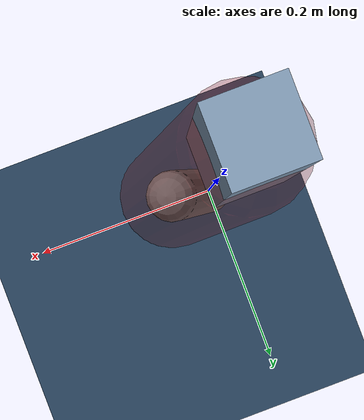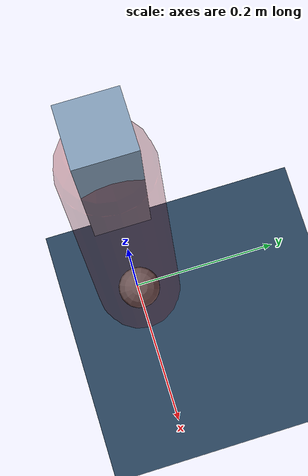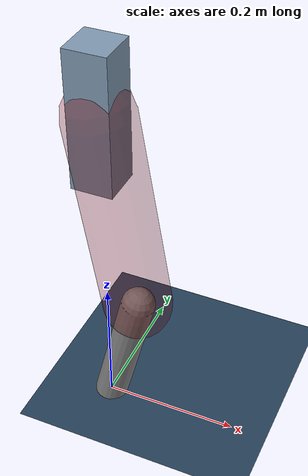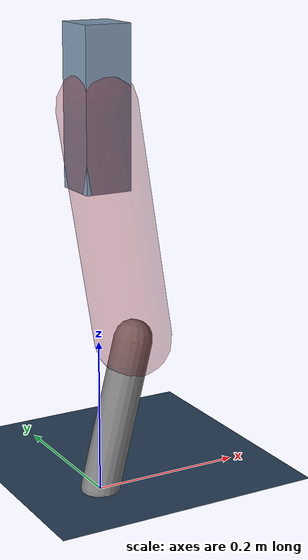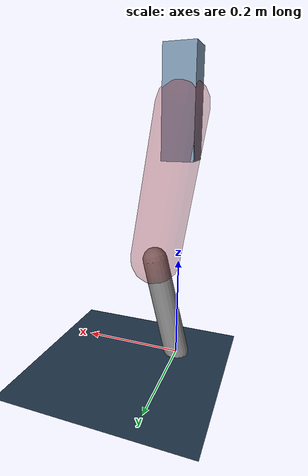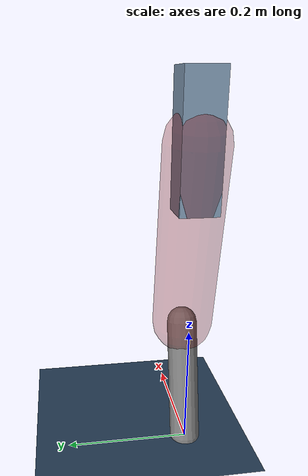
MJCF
<mujoco model="Hopper2D">
	<compiler inertiafromgeom="true" angle="radian" />
	<option timestep="0.001" integrator="implicit" cone="elliptic" solver="Newton" tolerance="1e-10" />

	<default>
		<geom contype="1" conaffinity="1" condim="3" friction="2 0.005 0.0001" solref="0.005 1" />
		<joint limited="true" damping="0.1" />
	</default>

	<asset>
		<texture name="skybox" type="skybox" builtin="gradient" rgb1=".4 .6 .8" rgb2="0 0 0" width="800" height="800" />
		<texture name="grid" type="2d" builtin="checker" rgb1=".1 .2 .3" rgb2=".2 .3 .4" width="300" height="300" mark="edge" markrgb=".2 .3 .4" />
		<material name="ground" texture="grid" texrepeat="1 1" texuniform="true" reflectance="0.1" />
		<material name="leg" rgba="0.5 0.6 0.7 1" />
	</asset>

	<worldbody>

		<geom name="floor" type="plane" size="5 5 0.25" material="ground" />

		<light directional="false" diffuse="0.8 0.8 0.8" specular="0.3 0.3 0.3" pos="0 0 2" dir="0 0 -1" />
		<light mode="targetbodycom" target="base" directional="false" diffuse="0.8 0.8 0.8" specular="0.3 0.3 0.3" pos="0 0 2" dir="0 0 -1" />

		<camera name="fixed" pos="0 -2 1" xyaxes="1 0 0 0 0 1" />
		<camera name="tracking" mode="trackcom" pos="0 -3 1" />

		<body name="root" pos="0 0 0.49656906338552675">
			<joint name="slide_x" type="slide" axis="1 0 0" range="-100 100" />
			<joint name="slide_z" type="slide" axis="0 0 1" range="0 10" />

			<body name="base" pos="0 0 0">
				<geom name="torso" type="box" size="0.03 0.03 0.1" mass="2.4370000000000003" material="leg" />

				<body name="link1" pos="0 0 0" euler="0 1.4084634024026732 0">
					<joint type="hinge" axis="0 -1 0" pos="0 0 0" name="hinge1" limited="true" range="-3.14 3.14" stiffness="0" damping="0.1" />
					<geom name="thigh" type="capsule" fromto="0 0 0 0.30345832260949424 0 0" size="0.05" rgba="0.5 0 0 0.3" mass="0.9981374710456344" />

					<body name="link2" pos="0.30345832260949424 0 0" euler="0 0.4062136005670705 0">
						<joint type="hinge" axis="0 -1 0" pos="0 0 0" name="hinge2" limited="true" range="-3.14 3.14" stiffness="0" damping="0.1" />
						<geom name="shank" type="capsule" fromto="0 0 0 0.20311074077603256 0 0" size="0.025" mass="0.4034996666984293" />

					</body>
				</body>
			</body>
		</body>
	</worldbody>

	<actuator>
		<motor name="torque1" joint="hinge1" ctrlrange="-86.81437116599409 86.81437116599409" ctrllimited="true" gear="1" />
		<motor name="torque2" joint="hinge2" ctrlrange="-78.30328231826297 78.30328231826297" ctrllimited="true" gear="1" />
	</actuator>
</mujoco>
